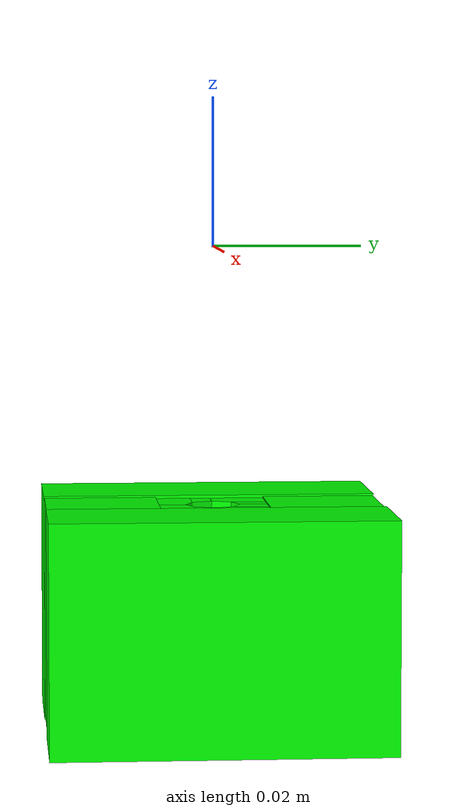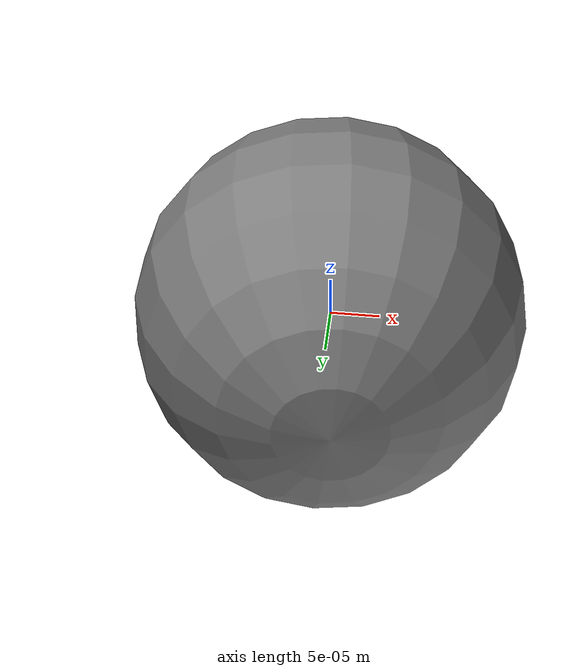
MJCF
<mujoco model="hole">

 <asset>

			<mesh file="meshes/Shirs_Hole/Sphere_hull_1.stl" name="1" scale="1.5 1.5 3" />

			<mesh file="meshes/Shirs_Hole/Cube_hull_1.stl" name="2" scale="1.5 1.5 3" />
			<mesh file="meshes/Shirs_Hole/Cube_hull_2.stl" name="3" scale="1.5 1.5 3" />
			<mesh file="meshes/Shirs_Hole/Cube_hull_3.stl" name="4" scale="1.5 1.5 3" />
			<mesh file="meshes/Shirs_Hole/Cube_hull_4.stl" name="5" scale="1.5 1.5 3" />
			<mesh file="meshes/Shirs_Hole/Cube_hull_5.stl" name="6" scale="1.5 1.5 3" />
			<mesh file="meshes/Shirs_Hole/Cube_hull_6.stl" name="7" scale="1.5 1.5 3" />
			<mesh file="meshes/Shirs_Hole/Cube_hull_7.stl" name="8" scale="1.5 1.5 3" />
			<mesh file="meshes/Shirs_Hole/Cube_hull_8.stl" name="9" scale="1.5 1.5 3" />
			<mesh file="meshes/Shirs_Hole/Cube_001_hull_1.stl" name="10" scale="1.5 1.5 3" />
			<mesh file="meshes/Shirs_Hole/Cube_002_hull_1.stl" name="11" scale="1.5 1.5 3" />
			<mesh file="meshes/Shirs_Hole/Cube_003_hull_1.stl" name="12" scale="1.5 1.5 3" />
			<mesh file="meshes/Shirs_Hole/Cube_004_hull_1.stl" name="13" scale="1.5 1.5 3" />

	<texture file="../textures/ceramic.png" name="tex-ceramic"/>
    <material name="ceramic" reflectance="0.5" texrepeat="1 1" texture="tex-ceramic" texuniform="true"/>
  </asset>

  <worldbody>

    <body>
		<body name="object">
		<geom pos="0 0 -0.05" mesh="2" type="mesh" solimp="0.998 0.998 0.001" solref="0.001 1" density="6700" friction="0.95 0.3 0.1" material="ceramic" group="1" condim="4" rgba="0 1 0 1"  />
		<geom pos="0 0 -0.05" mesh="3" type="mesh" solimp="0.998 0.998 0.001" solref="0.001 1" density="6700" friction="0.95 0.3 0.1" material="ceramic" group="1" condim="4" rgba="0 1 0 1"  />
		<geom pos="0 0 -0.05" mesh="4" type="mesh" solimp="0.998 0.998 0.001" solref="0.001 1" density="6700" friction="0.95 0.3 0.1" material="ceramic" group="1" condim="4" rgba="0 1 0 1"  />
		<geom pos="0 0 -0.05" mesh="5" type="mesh" solimp="0.998 0.998 0.001" solref="0.001 1" density="6700" friction="0.95 0.3 0.1" material="ceramic" group="1" condim="4" rgba="0 1 0 1"  />
		<geom pos="0 0 -0.05" mesh="6" type="mesh" solimp="0.998 0.998 0.001" solref="0.001 1" density="6700" friction="0.95 0.3 0.1" material="ceramic" group="1" condim="4" rgba="0 1 0 1"  />
		<geom pos="0 0 -0.05" mesh="7" type="mesh" solimp="0.998 0.998 0.001" solref="0.001 1" density="6700" friction="0.95 0.3 0.1" material="ceramic" group="1" condim="4" rgba="0 1 0 1"  />
		<geom pos="0 0 -0.05" mesh="8" type="mesh" solimp="0.9hole_middle_cylinder98 0.998 0.001" solref="0.001 1" density="6700" friction="0.95 0.3 0.1" material="ceramic" group="1" condim="4" rgba="0 1 0 1"  />
		<geom pos="0 0 -0.05" mesh="9" type="mesh" solimp="0.998 0.998 0.001" solref="0.001 1" density="6700" friction="0.95 0.3 0.1" material="ceramic" group="1" condim="4" rgba="0 1 0 1"  />
		<geom pos="0 0 -0.05" mesh="10" type="mesh" solimp="0.998 0.998 0.001" solref="0.001 1" density="6700" friction="0.95 0.3 0.1" material="ceramic" group="1" condim="4" rgba="0 1 0 1"  />
		<geom pos="0 0 -0.05" mesh="11" type="mesh" solimp="0.998 0.998 0.001" solref="0.001 1" density="6700" friction="0.95 0.3 0.1" material="ceramic" group="1" condim="4" rgba="0 1 0 1"  />
		<geom pos="0 0 -0.05" mesh="12" type="mesh" solimp="0.998 0.998 0.001" solref="0.001 1" density="6700" friction="0.95 0.3 0.1" material="ceramic" group="1" condim="4" rgba="0 1 0 1"  />
		<geom pos="0 0 -0.05" mesh="13" type="mesh" solimp="0.998 0.998 0.001" solref="0.001 1" density="6700" friction="0.95 0.3 0.1" material="ceramic" group="1" condim="4" rgba="0 1 0 1"  />

		<site name="middle_cylinder" pos="0.000 0.000 -0.0" size="0.0002 0.0002 0.0002" />

		<body name="hole" pos="0.00 0.000 -0.06">
			<geom density="3000" friction="1.0 0.005 0.0001" group="1" name="hole"  rgba="1 0 0 1" size="0.001 0.001 0.001" type="box" />
		</body>

		</body>

      <body name="visual">

      </body>

      <site rgba="0 0 0 0" size="0.005" pos="0 0 -0.02" name="bottom_site"/>
      <site rgba="0 0 0 0" size="0.005" pos="0 0 0.02" name="top_site"/>
      <site rgba="0 0 0 0" size="0.005" pos="0.25 0.25 0.1" name="horizontal_radius_site"/>
    </body>
  </worldbody>
</mujoco>
